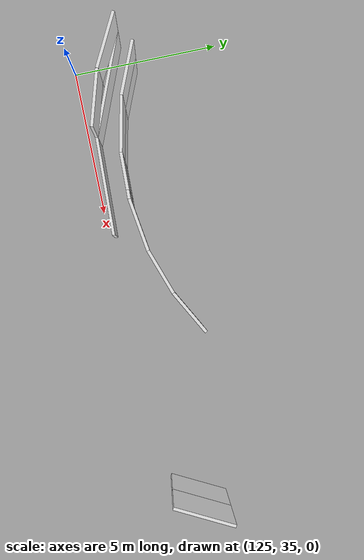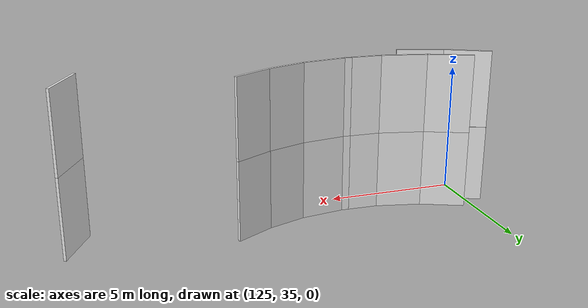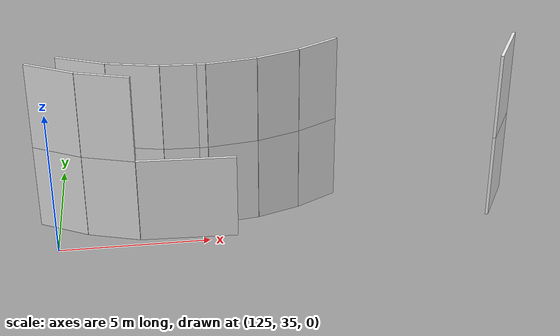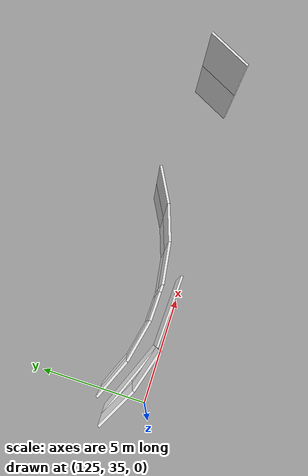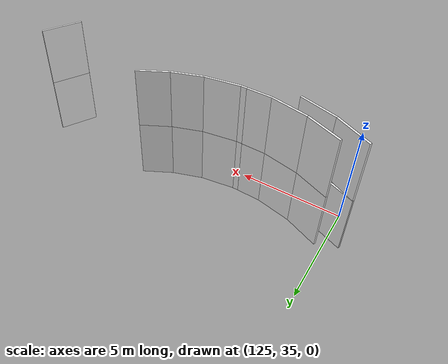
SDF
<sdf version="1.6">
 <world name="default">
  <model name="wall_126.1_36.8_1.5">
   <static>true</static>
   <pose>126.13000000000466 36.77499999990687 1.5 0 0 -0.40106625021121617</pose>
   <link name="link">
    <visual name="visual">
     <geometry><box><size>1.716187635361509 0.1 3</size></box></geometry>
     <material>
      <script><uri>file://media/materials/scripts/gazebo.material</uri><name>Gazebo/White</name></script>
     </material>
    </visual>
    <collision name="collision"><geometry><box><size>1.716187635361509 0.1 3</size></box></geometry></collision>
   </link>
  </model>
  <model name="wall_127.8_36.3_1.5">
   <static>true</static>
   <pose>127.76999999998952 36.25499999988824 1.5 0 0 -0.21430488386451166</pose>
   <link name="link">
    <visual name="visual">
     <geometry><box><size>1.739798838981761 0.1 3</size></box></geometry>
     <material>
      <script><uri>file://media/materials/scripts/gazebo.material</uri><name>Gazebo/White</name></script>
     </material>
    </visual>
    <collision name="collision"><geometry><box><size>1.739798838981761 0.1 3</size></box></geometry></collision>
   </link>
  </model>
  <model name="wall_129.2_36.1_1.5">
   <static>true</static>
   <pose>129.20000000001164 36.05499999993481 1.5 0 0 -0.025856305182021404</pose>
   <link name="link">
    <visual name="visual">
     <geometry><box><size>1.1603878662168654 0.1 3</size></box></geometry>
     <material>
      <script><uri>file://media/materials/scripts/gazebo.material</uri><name>Gazebo/White</name></script>
     </material>
    </visual>
    <collision name="collision"><geometry><box><size>1.1603878662168654 0.1 3</size></box></geometry></collision>
   </link>
  </model>
  <model name="wall_129.9_36.0_1.5">
   <static>true</static>
   <pose>129.9200000000128 36.03499999991618 1.5 0 0 -0.035699113546877645</pose>
   <link name="link">
    <visual name="visual">
     <geometry><box><size>0.2801785145008318 0.1 3</size></box></geometry>
     <material>
      <script><uri>file://media/materials/scripts/gazebo.material</uri><name>Gazebo/White</name></script>
     </material>
    </visual>
    <collision name="collision"><geometry><box><size>0.2801785145008318 0.1 3</size></box></geometry></collision>
   </link>
  </model>
  <model name="wall_130.9_36.1_1.5">
   <static>true</static>
   <pose>130.88999999998487 36.14999999990687 1.5 0 0 0.14358339378054572</pose>
   <link name="link">
    <visual name="visual">
     <geometry><box><size>1.6772596698252356 0.1 3</size></box></geometry>
     <material>
      <script><uri>file://media/materials/scripts/gazebo.material</uri><name>Gazebo/White</name></script>
     </material>
    </visual>
    <collision name="collision"><geometry><box><size>1.6772596698252356 0.1 3</size></box></geometry></collision>
   </link>
  </model>
  <model name="wall_132.4_36.5_1.5">
   <static>true</static>
   <pose>132.42999999999302 36.514999999897555 1.5 0 0 0.33227648126688747</pose>
   <link name="link">
    <visual name="visual">
     <geometry><box><size>1.5021651040686979 0.1 3</size></box></geometry>
     <material>
      <script><uri>file://media/materials/scripts/gazebo.material</uri><name>Gazebo/White</name></script>
     </material>
    </visual>
    <collision name="collision"><geometry><box><size>1.5021651040686979 0.1 3</size></box></geometry></collision>
   </link>
  </model>
  <model name="wall_133.8_37.1_1.5">
   <static>true</static>
   <pose>133.82000000000698 37.12999999988824 1.5 0 0 0.4983157943414261</pose>
   <link name="link">
    <visual name="visual">
     <geometry><box><size>1.5482893787315108 0.1 3</size></box></geometry>
     <material>
      <script><uri>file://media/materials/scripts/gazebo.material</uri><name>Gazebo/White</name></script>
     </material>
    </visual>
    <collision name="collision"><geometry><box><size>1.5482893787315108 0.1 3</size></box></geometry></collision>
   </link>
  </model>
  <model name="wall_125.2_36.3_1.5">
   <static>true</static>
   <pose>125.16500000000815 36.300000000046566 1.5 0 0 -0.48603192948913904</pose>
   <link name="link">
    <visual name="visual">
     <geometry><box><size>1.798249148648044 0.1 3</size></box></geometry>
     <material>
      <script><uri>file://media/materials/scripts/gazebo.material</uri><name>Gazebo/White</name></script>
     </material>
    </visual>
    <collision name="collision"><geometry><box><size>1.798249148648044 0.1 3</size></box></geometry></collision>
   </link>
  </model>
  <model name="wall_126.8_35.6_1.5">
   <static>true</static>
   <pose>126.82000000000698 35.61999999987893 1.5 0 0 -0.2935889874231719</pose>
   <link name="link">
    <visual name="visual">
     <geometry><box><size>1.7968861955959423 0.1 3</size></box></geometry>
     <material>
      <script><uri>file://media/materials/scripts/gazebo.material</uri><name>Gazebo/White</name></script>
     </material>
    </visual>
    <collision name="collision"><geometry><box><size>1.7968861955959423 0.1 3</size></box></geometry></collision>
   </link>
  </model>
  <model name="wall_140.0_36.3_1.5">
   <static>true</static>
   <pose>140.0 36.30499999993481 1.5 0 0 1.091454939073582</pose>
   <link name="link">
    <visual name="visual">
     <geometry><box><size>1.9948182874996538 0.1 3</size></box></geometry>
     <material>
      <script><uri>file://media/materials/scripts/gazebo.material</uri><name>Gazebo/White</name></script>
     </material>
    </visual>
    <collision name="collision"><geometry><box><size>1.9948182874996538 0.1 3</size></box></geometry></collision>
   </link>
  </model>
  <model name="wall_129.3_35.3_1.5">
   <static>true</static>
   <pose>129.30499999999302 35.30499999993481 1.5 0 0 3.107759415198327</pose>
   <link name="link">
    <visual name="visual">
     <geometry><box><size>3.2518610056352832 0.1 3</size></box></geometry>
     <material>
      <script><uri>file://media/materials/scripts/gazebo.material</uri><name>Gazebo/White</name></script>
     </material>
    </visual>
    <collision name="collision"><geometry><box><size>3.2518610056352832 0.1 3</size></box></geometry></collision>
   </link>
  </model>
  <model name="wall_126.0_36.0_1.5">
   <static>true</static>
   <pose>126.02499999999418 36.04000000003725 1.5 0 0 2.7517456035789243</pose>
   <link name="link">
    <visual name="visual">
     <geometry><box><size>3.578505274677758 0.1 3</size></box></geometry>
     <material>
      <script><uri>file://media/materials/scripts/gazebo.material</uri><name>Gazebo/White</name></script>
     </material>
    </visual>
    <collision name="collision"><geometry><box><size>3.578505274677758 0.1 3</size></box></geometry></collision>
   </link>
  </model>
  <model name="wall_126.1_36.8_4.5">
   <static>true</static>
   <pose>126.13000000000466 36.77499999990687 4.5 0 0 -0.40106625021121617</pose>
   <link name="link">
    <visual name="visual">
     <geometry><box><size>1.716187635361509 0.1 3</size></box></geometry>
     <material>
      <script><uri>file://media/materials/scripts/gazebo.material</uri><name>Gazebo/White</name></script>
     </material>
    </visual>
    <collision name="collision"><geometry><box><size>1.716187635361509 0.1 3</size></box></geometry></collision>
   </link>
  </model>
  <model name="wall_127.8_36.3_4.5">
   <static>true</static>
   <pose>127.76999999998952 36.25499999988824 4.5 0 0 -0.21430488386451166</pose>
   <link name="link">
    <visual name="visual">
     <geometry><box><size>1.739798838981761 0.1 3</size></box></geometry>
     <material>
      <script><uri>file://media/materials/scripts/gazebo.material</uri><name>Gazebo/White</name></script>
     </material>
    </visual>
    <collision name="collision"><geometry><box><size>1.739798838981761 0.1 3</size></box></geometry></collision>
   </link>
  </model>
  <model name="wall_129.2_36.1_4.5">
   <static>true</static>
   <pose>129.20000000001164 36.05499999993481 4.5 0 0 -0.025856305182021404</pose>
   <link name="link">
    <visual name="visual">
     <geometry><box><size>1.1603878662168654 0.1 3</size></box></geometry>
     <material>
      <script><uri>file://media/materials/scripts/gazebo.material</uri><name>Gazebo/White</name></script>
     </material>
    </visual>
    <collision name="collision"><geometry><box><size>1.1603878662168654 0.1 3</size></box></geometry></collision>
   </link>
  </model>
  <model name="wall_129.9_36.0_4.5">
   <static>true</static>
   <pose>129.9200000000128 36.03499999991618 4.5 0 0 -0.035699113546877645</pose>
   <link name="link">
    <visual name="visual">
     <geometry><box><size>0.2801785145008318 0.1 3</size></box></geometry>
     <material>
      <script><uri>file://media/materials/scripts/gazebo.material</uri><name>Gazebo/White</name></script>
     </material>
    </visual>
    <collision name="collision"><geometry><box><size>0.2801785145008318 0.1 3</size></box></geometry></collision>
   </link>
  </model>
  <model name="wall_130.9_36.1_4.5">
   <static>true</static>
   <pose>130.88999999998487 36.14999999990687 4.5 0 0 0.14358339378054572</pose>
   <link name="link">
    <visual name="visual">
     <geometry><box><size>1.6772596698252356 0.1 3</size></box></geometry>
     <material>
      <script><uri>file://media/materials/scripts/gazebo.material</uri><name>Gazebo/White</name></script>
     </material>
    </visual>
    <collision name="collision"><geometry><box><size>1.6772596698252356 0.1 3</size></box></geometry></collision>
   </link>
  </model>
  <model name="wall_132.4_36.5_4.5">
   <static>true</static>
   <pose>132.42999999999302 36.514999999897555 4.5 0 0 0.33227648126688747</pose>
   <link name="link">
    <visual name="visual">
     <geometry><box><size>1.5021651040686979 0.1 3</size></box></geometry>
     <material>
      <script><uri>file://media/materials/scripts/gazebo.material</uri><name>Gazebo/White</name></script>
     </material>
    </visual>
    <collision name="collision"><geometry><box><size>1.5021651040686979 0.1 3</size></box></geometry></collision>
   </link>
  </model>
  <model name="wall_133.8_37.1_4.5">
   <static>true</static>
   <pose>133.82000000000698 37.12999999988824 4.5 0 0 0.4983157943414261</pose>
   <link name="link">
    <visual name="visual">
     <geometry><box><size>1.5482893787315108 0.1 3</size></box></geometry>
     <material>
      <script><uri>file://media/materials/scripts/gazebo.material</uri><name>Gazebo/White</name></script>
     </material>
    </visual>
    <collision name="collision"><geometry><box><size>1.5482893787315108 0.1 3</size></box></geometry></collision>
   </link>
  </model>
  <model name="wall_125.2_36.3_4.5">
   <static>true</static>
   <pose>125.16500000000815 36.300000000046566 4.5 0 0 -0.48603192948913904</pose>
   <link name="link">
    <visual name="visual">
     <geometry><box><size>1.798249148648044 0.1 3</size></box></geometry>
     <material>
      <script><uri>file://media/materials/scripts/gazebo.material</uri><name>Gazebo/White</name></script>
     </material>
    </visual>
    <collision name="collision"><geometry><box><size>1.798249148648044 0.1 3</size></box></geometry></collision>
   </link>
  </model>
  <model name="wall_126.8_35.6_4.5">
   <static>true</static>
   <pose>126.82000000000698 35.61999999987893 4.5 0 0 -0.2935889874231719</pose>
   <link name="link">
    <visual name="visual">
     <geometry><box><size>1.7968861955959423 0.1 3</size></box></geometry>
     <material>
      <script><uri>file://media/materials/scripts/gazebo.material</uri><name>Gazebo/White</name></script>
     </material>
    </visual>
    <collision name="collision"><geometry><box><size>1.7968861955959423 0.1 3</size></box></geometry></collision>
   </link>
  </model>
  <model name="wall_140.0_36.3_4.5">
   <static>true</static>
   <pose>140.0 36.30499999993481 4.5 0 0 1.091454939073582</pose>
   <link name="link">
    <visual name="visual">
     <geometry><box><size>1.9948182874996538 0.1 3</size></box></geometry>
     <material>
      <script><uri>file://media/materials/scripts/gazebo.material</uri><name>Gazebo/White</name></script>
     </material>
    </visual>
    <collision name="collision"><geometry><box><size>1.9948182874996538 0.1 3</size></box></geometry></collision>
   </link>
  </model>
 </world>
</sdf>
